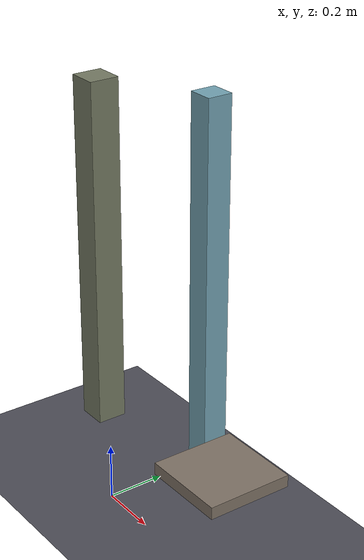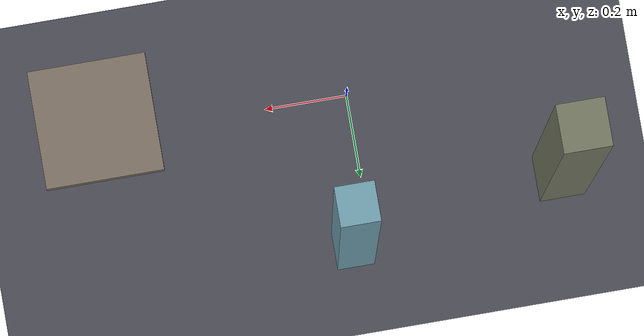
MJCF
<mujoco model="pillar_avoid_7">
  <compiler angle="radian" autolimits="true" boundmass="0" balanceinertia="true"/>
  <option impratio="10" gravity="0 0 -9.8" integrator="implicitfast" cone="elliptic" jacobian="sparse" noslip_iterations="4">
    <flag multiccd="enable" contact="enable" warmstart="enable"/>
  </option>
  <size njmax="6000" nconmax="6000"/>
  <visual><global offwidth="1280" offheight="720"/><map znear="0.001"/>
    <headlight ambient="0.45 0.45 0.45" diffuse="0.6 0.6 0.6"/></visual>
  <worldbody>
    <light pos="0.4 0.4 3" dir="0 0 -1" diffuse="0.7 0.7 0.7"/>
    <!-- Obstacle-avoidance variant 7: 2 tall PHYSICAL pillars; placements blocking >10%
         of exo-camera sightlines to the arm excluded (training view preserved). -->
    <body name="pillars" pos="0 0 0"><geom name="floor" type="plane" size="5 5 0.1" pos="0 0 0" rgba="0.30 0.30 0.34 1" contype="8" conaffinity="15"/><geom name="obj_pad" type="box" pos="0.60 0 0.42" size="0.14 0.14 0.02" rgba="0.5 0.45 0.4 1" contype="8" conaffinity="15"/><geom name="pillar_2" type="box" pos="-0.472 0.277 0.657" size="0.055 0.055 0.657" contype="8" conaffinity="15" rgba="0.46 0.48 0.39 1"/><geom name="pillar_4" type="box" pos="0.048 0.368 0.689" size="0.045 0.045 0.689" contype="8" conaffinity="15" rgba="0.45 0.64 0.70 1"/></body>
  </worldbody>
</mujoco>
